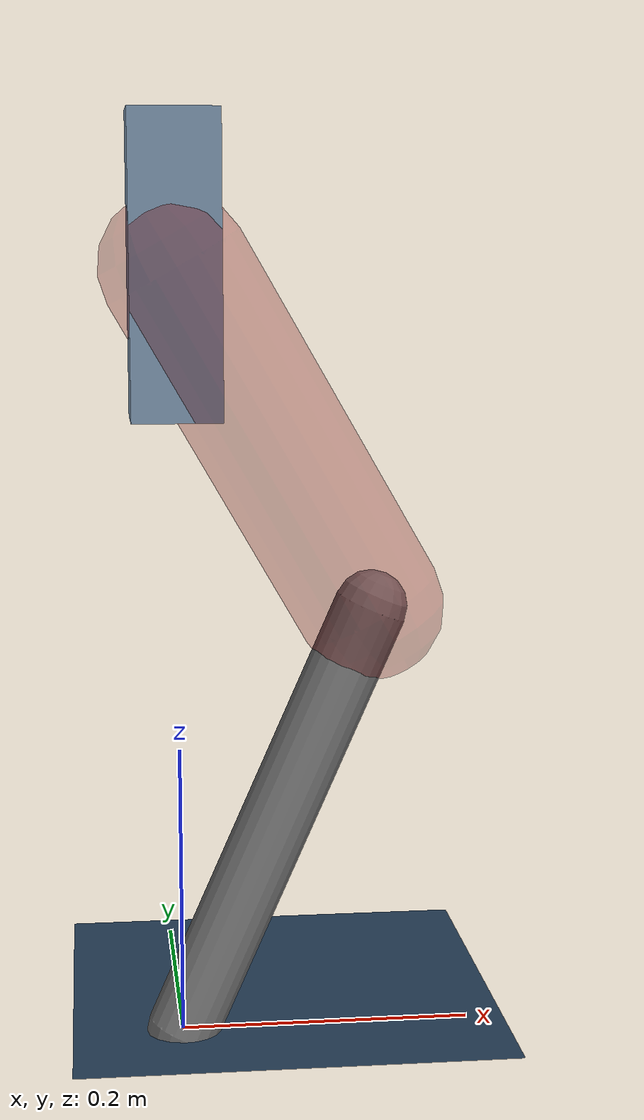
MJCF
<mujoco model="Hopper2D">
	<compiler inertiafromgeom="true" angle="radian" />
	<option timestep="0.001" integrator="implicit" cone="elliptic" solver="Newton" tolerance="1e-10" />

	<default>
		<geom contype="1" conaffinity="1" condim="3" friction="2 0.005 0.0001" solref="0.005 1" />
		<joint limited="true" damping="0.1" />
	</default>

	<asset>
		<texture name="skybox" type="skybox" builtin="gradient" rgb1=".4 .6 .8" rgb2="0 0 0" width="800" height="800" />
		<texture name="grid" type="2d" builtin="checker" rgb1=".1 .2 .3" rgb2=".2 .3 .4" width="300" height="300" mark="edge" markrgb=".2 .3 .4" />
		<material name="ground" texture="grid" texrepeat="1 1" texuniform="true" reflectance="0.1" />
		<material name="leg" rgba="0.5 0.6 0.7 1" />
	</asset>

	<worldbody>

		<geom name="floor" type="plane" size="5 5 0.25" material="ground" />

		<light directional="false" diffuse="0.8 0.8 0.8" specular="0.3 0.3 0.3" pos="0 0 2" dir="0 0 -1" />
		<light mode="targetbodycom" target="base" directional="false" diffuse="0.8 0.8 0.8" specular="0.3 0.3 0.3" pos="0 0 2" dir="0 0 -1" />

		<camera name="fixed" pos="0 -2 1" xyaxes="1 0 0 0 0 1" />
		<camera name="tracking" mode="trackcom" pos="0 -3 1" />

		<body name="root" pos="0 0 0.5250040529530458">
			<joint name="slide_x" type="slide" axis="1 0 0" range="-100 100" />
			<joint name="slide_z" type="slide" axis="0 0 1" range="0 10" />

			<body name="base" pos="0 0 0">
				<geom name="torso" type="box" size="0.03 0.03 0.1" mass="1.901" material="leg" />

				<body name="link1" pos="0 0 0" euler="0 1.0492671869336423 0">
					<joint type="hinge" axis="0 -1 0" pos="0 0 0" name="hinge1" limited="true" range="-3.14 3.14" stiffness="0" damping="0.1" />
					<geom name="thigh" type="capsule" fromto="0 0 0 0.26264030370835983 0 0" size="0.05" rgba="0.5 0 0 0.3" mass="0.8893288200125715" />

					<body name="link2" pos="0.26264030370835983 0 0" euler="0 0.9361659565634368 0">
						<joint type="hinge" axis="0 -1 0" pos="0 0 0" name="hinge2" limited="true" range="-3.14 3.14" stiffness="0" damping="0.1" />
						<geom name="shank" type="capsule" fromto="0 0 0 0.3248024670258106 0 0" size="0.025" mass="0.5035419736206486" />

					</body>
				</body>
			</body>
		</body>
	</worldbody>

	<actuator>
		<motor name="torque1" joint="hinge1" ctrlrange="-13.24220140195003 13.24220140195003" ctrllimited="true" gear="1" />
		<motor name="torque2" joint="hinge2" ctrlrange="-49.65770833370868 49.65770833370868" ctrllimited="true" gear="1" />
	</actuator>
</mujoco>
